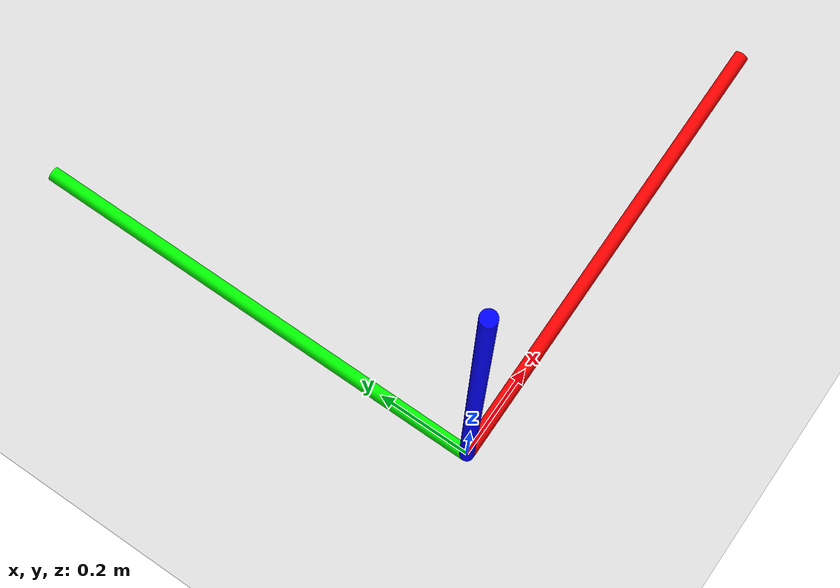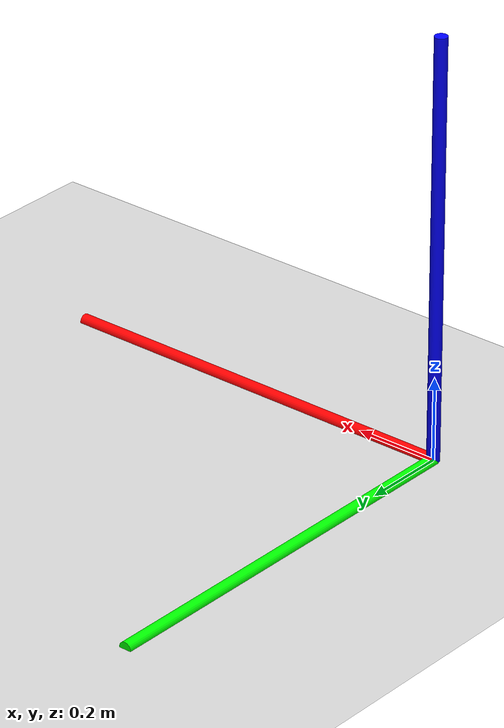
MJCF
<mujoco model="floating_axes_scene">
  <compiler angle="radian" coordinate="local"/>
  <option timestep="0.002" gravity="0 0 -9.81"/>

  <worldbody>
    <!-- Floor (XY plane) -->
    <geom name="floor" type="plane" pos="0 0 0" size="5 5 0.2" rgba="0.85 0.85 0.85 1"/>

    <!-- Lighting -->
    <light name="toplight" pos="0 0 3" dir="0 0 -1" diffuse="0.8 0.8 0.8" specular="0.2 0.2 0.2"/>

    <!-- Floating base axes at origin -->
    <body name="axes" pos="0 0 0">
      <joint name="base_free" type="free"/>

      <!-- Only positive directions; RGB = XYZ -->
      <body name="x_axis" pos="0 0 0">
        <geom name="x_cyl" type="cylinder" fromto="0 0 0 1 0 0" size="0.015" rgba="1 0 0 1" contype="0" conaffinity="0"/>
      </body>
      <body name="y_axis" pos="0 0 0">
        <geom name="y_cyl" type="cylinder" fromto="0 0 0 0 1 0" size="0.015" rgba="0 1 0 1" contype="0" conaffinity="0"/>
      </body>
      <body name="z_axis" pos="0 0 0">
        <geom name="z_cyl" type="cylinder" fromto="0 0 0 0 0 1" size="0.015" rgba="0 0 1 1" contype="0" conaffinity="0"/>
      </body>
    </body>
  </worldbody>
</mujoco>
